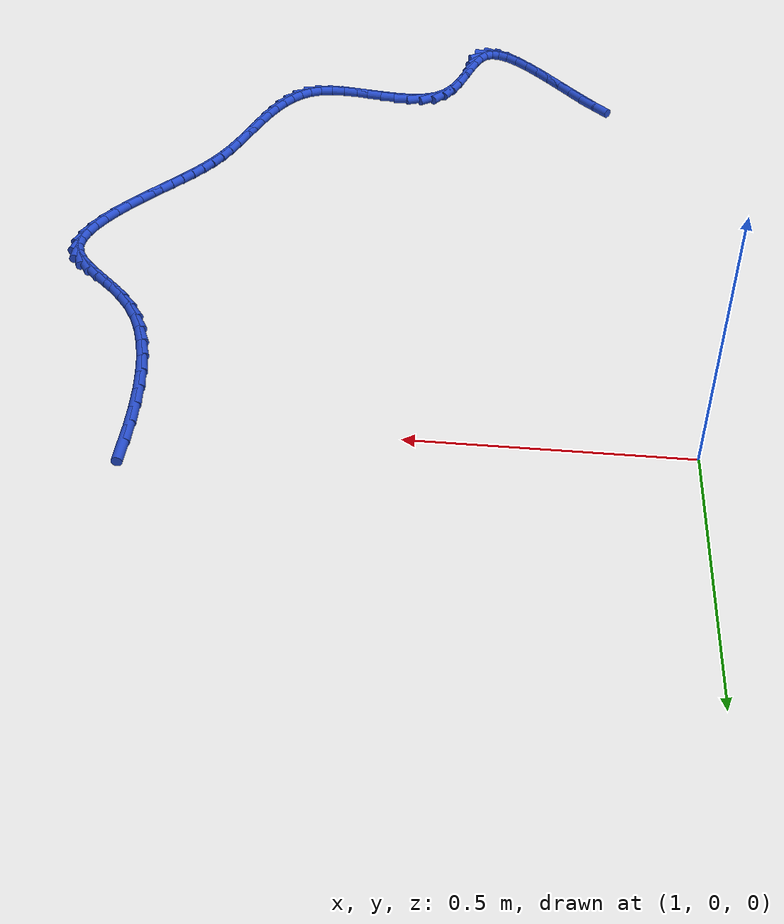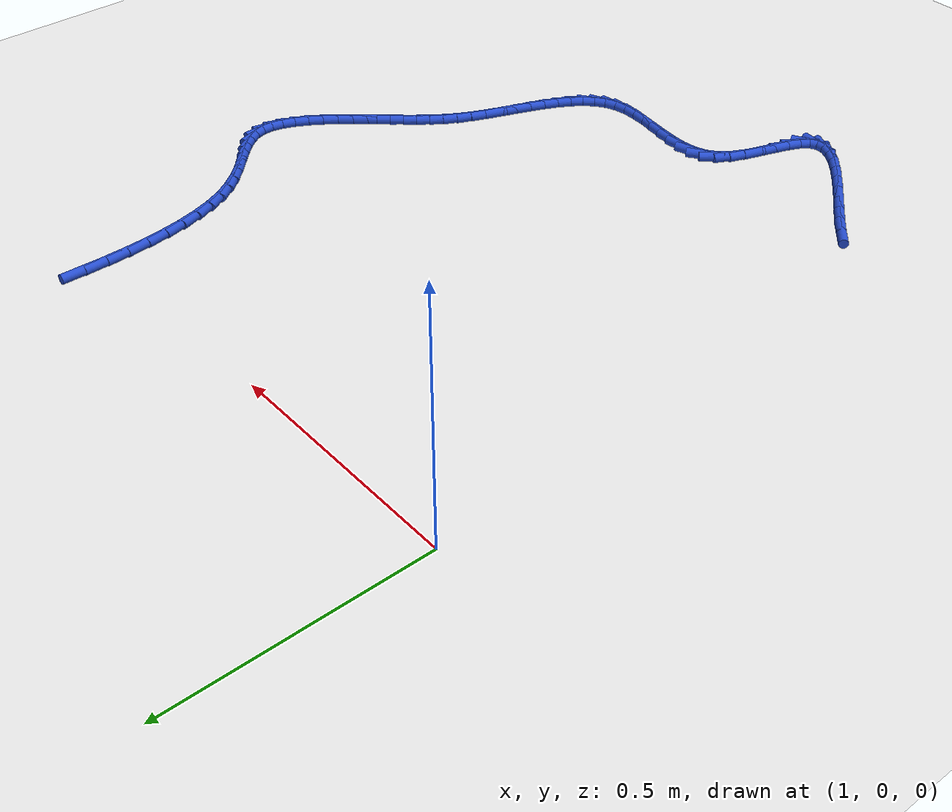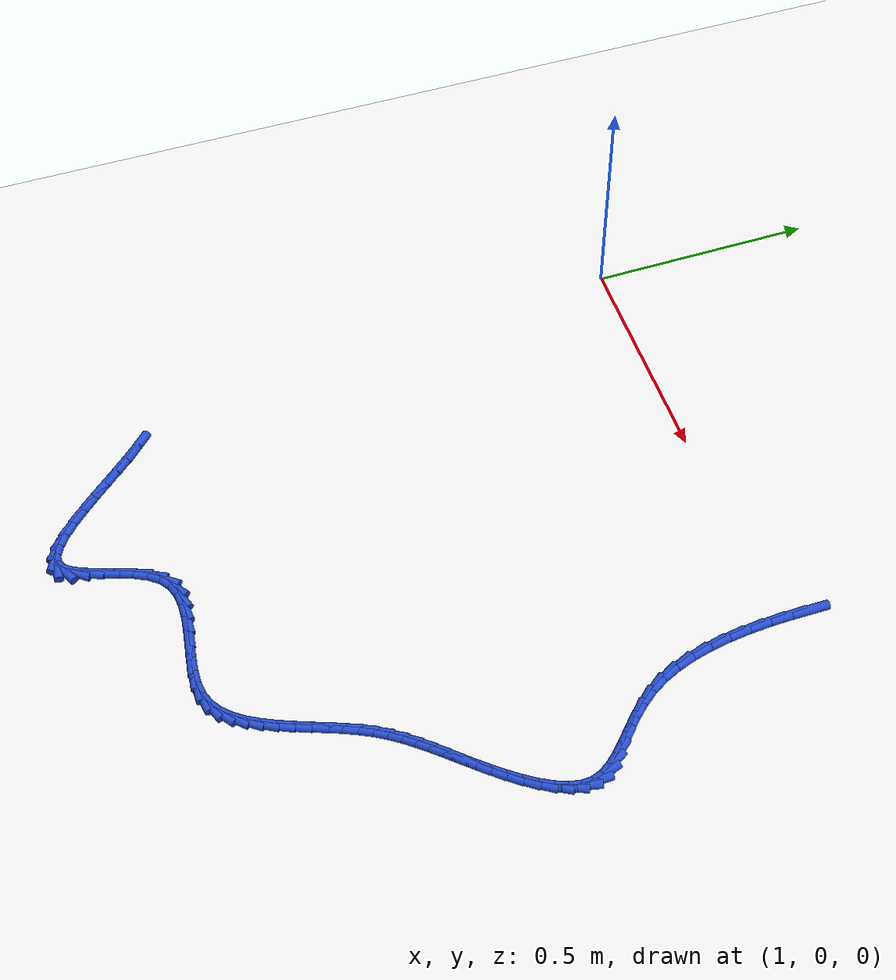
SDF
<sdf version="1.6">
 <world name="default">
  <model name="ground_plane">
   <static>1</static>
   <link name="link">
    <collision name="collision">
     <geometry><plane><normal>0 0 1</normal><size>100 100</size></plane></geometry>
     <surface><friction><ode><mu>100</mu><mu2>50</mu2></ode></friction></surface>
    </collision>
    <visual name="visual">
     <cast_shadows>0</cast_shadows>
     <geometry><plane><normal>0 0 1</normal><size>100 100</size></plane></geometry>
     <material>
      <script><uri>file://media/materials/scripts/gazebo.material</uri><name>Gazebo/WhiteGlow</name></script>
     </material>
    </visual>
   </link>
  </model>
  <model name="line">
   <link name="link_151">
    <pose>1.9687246488284251 0.068940906484432 0.01 0 1.57 1.5566883954499937</pose>
    <collision name="collision">
     <geometry><cylinder><radius>0.01</radius><length>0.08</length></cylinder></geometry>
    </collision>
    <visual name="visual">
     <material>
      <script><name>Gazebo/Blue</name><uri>file://media/materials/scripts/gazebo.material</uri></script>
     </material>
     <geometry><cylinder><radius>0.01</radius><length>0.08</length></cylinder></geometry>
    </visual>
   </link>
   <link name="link_152">
    <pose>1.9680653290896477 0.02221003008653097 0.01 0 1.57 -1.5502358848546987</pose>
    <collision name="collision">
     <geometry><cylinder><radius>0.01</radius><length>0.08</length></cylinder></geometry>
    </collision>
    <visual name="visual">
     <material>
      <script><name>Gazebo/Blue</name><uri>file://media/materials/scripts/gazebo.material</uri></script>
     </material>
     <geometry><cylinder><radius>0.01</radius><length>0.08</length></cylinder></geometry>
    </visual>
   </link>
   <link name="link_153">
    <pose>1.9690164489177648 -0.024043148918518914 0.01 0 1.57 -1.5098201945171041</pose>
    <collision name="collision">
     <geometry><cylinder><radius>0.01</radius><length>0.08</length></cylinder></geometry>
    </collision>
    <visual name="visual">
     <material>
      <script><name>Gazebo/Blue</name><uri>file://media/materials/scripts/gazebo.material</uri></script>
     </material>
     <geometry><cylinder><radius>0.01</radius><length>0.08</length></cylinder></geometry>
    </visual>
   </link>
   <link name="link_154">
    <pose>1.9717844994898681 -0.06938251366634053 0.01 0 1.57 -1.4623007918556568</pose>
    <collision name="collision">
     <geometry><cylinder><radius>0.01</radius><length>0.08</length></cylinder></geometry>
    </collision>
    <visual name="visual">
     <material>
      <script><name>Gazebo/Blue</name><uri>file://media/materials/scripts/gazebo.material</uri></script>
     </material>
     <geometry><cylinder><radius>0.01</radius><length>0.08</length></cylinder></geometry>
    </visual>
   </link>
   <link name="link_155">
    <pose>1.9765759719830498 -0.11337194729255826 0.01 0 1.57 -1.405936120022011</pose>
    <collision name="collision">
     <geometry><cylinder><radius>0.01</radius><length>0.08</length></cylinder></geometry>
    </collision>
    <visual name="visual">
     <material>
      <script><name>Gazebo/Blue</name><uri>file://media/materials/scripts/gazebo.material</uri></script>
     </material>
     <geometry><cylinder><radius>0.01</radius><length>0.08</length></cylinder></geometry>
    </visual>
   </link>
   <link name="link_156">
    <pose>1.983597357574402 -0.15557533293279663 0.01 0 1.57 -1.3385104959380658</pose>
    <collision name="collision">
     <geometry><cylinder><radius>0.01</radius><length>0.08</length></cylinder></geometry>
    </collision>
    <visual name="visual">
     <material>
      <script><name>Gazebo/Blue</name><uri>file://media/materials/scripts/gazebo.material</uri></script>
     </material>
     <geometry><cylinder><radius>0.01</radius><length>0.08</length></cylinder></geometry>
    </visual>
   </link>
   <link name="link_157">
    <pose>1.993055147441015 -0.1955565537226799 0.01 0 1.57 -1.2572739030714237</pose>
    <collision name="collision">
     <geometry><cylinder><radius>0.01</radius><length>0.08</length></cylinder></geometry>
    </collision>
    <visual name="visual">
     <material>
      <script><name>Gazebo/Blue</name><uri>file://media/materials/scripts/gazebo.material</uri></script>
     </material>
     <geometry><cylinder><radius>0.01</radius><length>0.08</length></cylinder></geometry>
    </visual>
   </link>
   <link name="link_158">
    <pose>2.0051558327599825 -0.2328794927978326 0.01 0 1.57 -1.1589969964617863</pose>
    <collision name="collision">
     <geometry><cylinder><radius>0.01</radius><length>0.08</length></cylinder></geometry>
    </collision>
    <visual name="visual">
     <material>
      <script><name>Gazebo/Blue</name><uri>file://media/materials/scripts/gazebo.material</uri></script>
     </material>
     <geometry><cylinder><radius>0.01</radius><length>0.08</length></cylinder></geometry>
    </visual>
   </link>
   <link name="link_159">
    <pose>2.0201059047083954 -0.26710803329387905 0.01 0 1.57 -1.041081575366171</pose>
    <collision name="collision">
     <geometry><cylinder><radius>0.01</radius><length>0.08</length></cylinder></geometry>
    </collision>
    <visual name="visual">
     <material>
      <script><name>Gazebo/Blue</name><uri>file://media/materials/scripts/gazebo.material</uri></script>
     </material>
     <geometry><cylinder><radius>0.01</radius><length>0.08</length></cylinder></geometry>
    </visual>
   </link>
   <link name="link_160">
    <pose>2.0380906282527396 -0.2978231182196289 0.01 0 1.57 -0.924086045255557</pose>
    <collision name="collision">
     <geometry><cylinder><radius>0.01</radius><length>0.08</length></cylinder></geometry>
    </collision>
    <visual name="visual">
     <material>
      <script><name>Gazebo/Blue</name><uri>file://media/materials/scripts/gazebo.material</uri></script>
     </material>
     <geometry><cylinder><radius>0.01</radius><length>0.08</length></cylinder></geometry>
    </visual>
   </link>
   <link name="link_161">
    <pose>2.0586834482182583 -0.3250974210305509 0.01 0 1.57 -0.8363928799036893</pose>
    <collision name="collision">
     <geometry><cylinder><radius>0.01</radius><length>0.08</length></cylinder></geometry>
    </collision>
    <visual name="visual">
     <material>
      <script><name>Gazebo/Blue</name><uri>file://media/materials/scripts/gazebo.material</uri></script>
     </material>
     <geometry><cylinder><radius>0.01</radius><length>0.08</length></cylinder></geometry>
    </visual>
   </link>
   <link name="link_162">
    <pose>2.080768241185261 -0.3495578331266087 0.01 0 1.57 -0.7826979853121446</pose>
    <collision name="collision">
     <geometry><cylinder><radius>0.01</radius><length>0.08</length></cylinder></geometry>
    </collision>
    <visual name="visual">
     <material>
      <script><name>Gazebo/Blue</name><uri>file://media/materials/scripts/gazebo.material</uri></script>
     </material>
     <geometry><cylinder><radius>0.01</radius><length>0.08</length></cylinder></geometry>
    </visual>
   </link>
   <link name="link_163">
    <pose>2.103192038112249 -0.3718608593723287 0.01 0 1.57 -0.7663566326472286</pose>
    <collision name="collision">
     <geometry><cylinder><radius>0.01</radius><length>0.08</length></cylinder></geometry>
    </collision>
    <visual name="visual">
     <material>
      <script><name>Gazebo/Blue</name><uri>file://media/materials/scripts/gazebo.material</uri></script>
     </material>
     <geometry><cylinder><radius>0.01</radius><length>0.08</length></cylinder></geometry>
    </visual>
   </link>
   <link name="link_164">
    <pose>2.1248018699577185 -0.39266300463223697 0.01 0 1.57 -0.7933491603346917</pose>
    <collision name="collision">
     <geometry><cylinder><radius>0.01</radius><length>0.08</length></cylinder></geometry>
    </collision>
    <visual name="visual">
     <material>
      <script><name>Gazebo/Blue</name><uri>file://media/materials/scripts/gazebo.material</uri></script>
     </material>
     <geometry><cylinder><radius>0.01</radius><length>0.08</length></cylinder></geometry>
    </visual>
   </link>
   <link name="link_165">
    <pose>2.1444447676801706 -0.4126207737708596 0.01 0 1.57 -0.8746245094248721</pose>
    <collision name="collision">
     <geometry><cylinder><radius>0.01</radius><length>0.08</length></cylinder></geometry>
    </collision>
    <visual name="visual">
     <material>
      <script><name>Gazebo/Blue</name><uri>file://media/materials/scripts/gazebo.material</uri></script>
     </material>
     <geometry><cylinder><radius>0.01</radius><length>0.08</length></cylinder></geometry>
    </visual>
   </link>
   <link name="link_166">
    <pose>2.1609677622381023 -0.4323906716527228 0.01 0 1.57 -1.0264983077673926</pose>
    <collision name="collision">
     <geometry><cylinder><radius>0.01</radius><length>0.08</length></cylinder></geometry>
    </collision>
    <visual name="visual">
     <material>
      <script><name>Gazebo/Blue</name><uri>file://media/materials/scripts/gazebo.material</uri></script>
     </material>
     <geometry><cylinder><radius>0.01</radius><length>0.08</length></cylinder></geometry>
    </visual>
   </link>
   <link name="link_167">
    <pose>2.1732178845900134 -0.4526292031423528 0.01 0 1.57 -1.2616069532566148</pose>
    <collision name="collision">
     <geometry><cylinder><radius>0.01</radius><length>0.08</length></cylinder></geometry>
    </collision>
    <visual name="visual">
     <material>
      <script><name>Gazebo/Blue</name><uri>file://media/materials/scripts/gazebo.material</uri></script>
     </material>
     <geometry><cylinder><radius>0.01</radius><length>0.08</length></cylinder></geometry>
    </visual>
   </link>
   <link name="link_168">
    <pose>2.1800421656944025 -0.4739928731042756 0.01 0 1.57 -1.5503444755363753</pose>
    <collision name="collision">
     <geometry><cylinder><radius>0.01</radius><length>0.08</length></cylinder></geometry>
    </collision>
    <visual name="visual">
     <material>
      <script><name>Gazebo/Blue</name><uri>file://media/materials/scripts/gazebo.material</uri></script>
     </material>
     <geometry><cylinder><radius>0.01</radius><length>0.08</length></cylinder></geometry>
    </visual>
   </link>
   <link name="link_169">
    <pose>2.1805131887877605 -0.49702049112638796 0.01 0 1.57 1.3527762958781568</pose>
    <collision name="collision">
     <geometry><cylinder><radius>0.01</radius><length>0.08</length></cylinder></geometry>
    </collision>
    <visual name="visual">
     <material>
      <script><name>Gazebo/Blue</name><uri>file://media/materials/scripts/gazebo.material</uri></script>
     </material>
     <geometry><cylinder><radius>0.01</radius><length>0.08</length></cylinder></geometry>
    </visual>
   </link>
   <link name="link_170">
    <pose>2.175083097451576 -0.5215309993766007 0.01 0 1.57 1.1855213435113294</pose>
    <collision name="collision">
     <geometry><cylinder><radius>0.01</radius><length>0.08</length></cylinder></geometry>
    </collision>
    <visual name="visual">
     <material>
      <script><name>Gazebo/Blue</name><uri>file://media/materials/scripts/gazebo.material</uri></script>
     </material>
     <geometry><cylinder><radius>0.01</radius><length>0.08</length></cylinder></geometry>
    </visual>
   </link>
   <link name="link_171">
    <pose>2.1647254419650923 -0.5470712651580745 0.01 0 1.57 1.069521757066636</pose>
    <collision name="collision">
     <geometry><cylinder><radius>0.01</radius><length>0.08</length></cylinder></geometry>
    </collision>
    <visual name="visual">
     <material>
      <script><name>Gazebo/Blue</name><uri>file://media/materials/scripts/gazebo.material</uri></script>
     </material>
     <geometry><cylinder><radius>0.01</radius><length>0.08</length></cylinder></geometry>
    </visual>
   </link>
   <link name="link_172">
    <pose>2.150414745095878 -0.573187648320517 0.01 0 1.57 0.9881785007850481</pose>
    <collision name="collision">
     <geometry><cylinder><radius>0.01</radius><length>0.08</length></cylinder></geometry>
    </collision>
    <visual name="visual">
     <material>
      <script><name>Gazebo/Blue</name><uri>file://media/materials/scripts/gazebo.material</uri></script>
     </material>
     <geometry><cylinder><radius>0.01</radius><length>0.08</length></cylinder></geometry>
    </visual>
   </link>
   <link name="link_173">
    <pose>2.133125529611498 -0.5994265087136367 0.01 0 1.57 0.9307020876666872</pose>
    <collision name="collision">
     <geometry><cylinder><radius>0.01</radius><length>0.08</length></cylinder></geometry>
    </collision>
    <visual name="visual">
     <material>
      <script><name>Gazebo/Blue</name><uri>file://media/materials/scripts/gazebo.material</uri></script>
     </material>
     <geometry><cylinder><radius>0.01</radius><length>0.08</length></cylinder></geometry>
    </visual>
   </link>
   <link name="link_174">
    <pose>2.1138323182795213 -0.6253342061871414 0.01 0 1.57 0.8906334164430298</pose>
    <collision name="collision">
     <geometry><cylinder><radius>0.01</radius><length>0.08</length></cylinder></geometry>
    </collision>
    <visual name="visual">
     <material>
      <script><name>Gazebo/Blue</name><uri>file://media/materials/scripts/gazebo.material</uri></script>
     </material>
     <geometry><cylinder><radius>0.01</radius><length>0.08</length></cylinder></geometry>
    </visual>
   </link>
   <link name="link_175">
    <pose>2.0935096338675145 -0.6504571005907392 0.01 0 1.57 0.8644421962767019</pose>
    <collision name="collision">
     <geometry><cylinder><radius>0.01</radius><length>0.08</length></cylinder></geometry>
    </collision>
    <visual name="visual">
     <material>
      <script><name>Gazebo/Blue</name><uri>file://media/materials/scripts/gazebo.material</uri></script>
     </material>
     <geometry><cylinder><radius>0.01</radius><length>0.08</length></cylinder></geometry>
    </visual>
   </link>
   <link name="link_176">
    <pose>2.073124700657414 -0.6743491741831434 0.01 0 1.57 0.8501683007787443</pose>
    <collision name="collision">
     <geometry><cylinder><radius>0.01</radius><length>0.08</length></cylinder></geometry>
    </collision>
    <visual name="visual">
     <material>
      <script><name>Gazebo/Blue</name><uri>file://media/materials/scripts/gazebo.material</uri></script>
     </material>
     <geometry><cylinder><radius>0.01</radius><length>0.08</length></cylinder></geometry>
    </visual>
   </link>
   <link name="link_177">
    <pose>2.0532945756190837 -0.6969301177559457 0.01 0 1.57 0.8477991245981236</pose>
    <collision name="collision">
     <geometry><cylinder><radius>0.01</radius><length>0.08</length></cylinder></geometry>
    </collision>
    <visual name="visual">
     <material>
      <script><name>Gazebo/Blue</name><uri>file://media/materials/scripts/gazebo.material</uri></script>
     </material>
     <geometry><cylinder><radius>0.01</radius><length>0.08</length></cylinder></geometry>
    </visual>
   </link>
   <link name="link_178">
    <pose>2.034138766672568 -0.7186392535077085 0.01 0 1.57 0.8586963785996252</pose>
    <collision name="collision">
     <geometry><cylinder><radius>0.01</radius><length>0.08</length></cylinder></geometry>
    </collision>
    <visual name="visual">
     <material>
      <script><name>Gazebo/Blue</name><uri>file://media/materials/scripts/gazebo.material</uri></script>
     </material>
     <geometry><cylinder><radius>0.01</radius><length>0.08</length></cylinder></geometry>
    </visual>
   </link>
   <link name="link_179">
    <pose>2.0157388619137024 -0.7399555064291443 0.01 0 1.57 0.8836286968076942</pose>
    <collision name="collision">
     <geometry><cylinder><radius>0.01</radius><length>0.08</length></cylinder></geometry>
    </collision>
    <visual name="visual">
     <material>
      <script><name>Gazebo/Blue</name><uri>file://media/materials/scripts/gazebo.material</uri></script>
     </material>
     <geometry><cylinder><radius>0.01</radius><length>0.08</length></cylinder></geometry>
    </visual>
   </link>
   <link name="link_180">
    <pose>1.998176449438325 -0.7613578015109652 0.01 0 1.57 0.9224219159535688</pose>
    <collision name="collision">
     <geometry><cylinder><radius>0.01</radius><length>0.08</length></cylinder></geometry>
    </collision>
    <visual name="visual">
     <material>
      <script><name>Gazebo/Blue</name><uri>file://media/materials/scripts/gazebo.material</uri></script>
     </material>
     <geometry><cylinder><radius>0.01</radius><length>0.08</length></cylinder></geometry>
    </visual>
   </link>
   <link name="link_181">
    <pose>1.981533117342271 -0.7833250637438836 0.01 0 1.57 0.9737659279051966</pose>
    <collision name="collision">
     <geometry><cylinder><radius>0.01</radius><length>0.08</length></cylinder></geometry>
    </collision>
    <visual name="visual">
     <material>
      <script><name>Gazebo/Blue</name><uri>file://media/materials/scripts/gazebo.material</uri></script>
     </material>
     <geometry><cylinder><radius>0.01</radius><length>0.08</length></cylinder></geometry>
    </visual>
   </link>
   <link name="link_182">
    <pose>1.9658904537213784 -0.8063362181186121 0.01 0 1.57 1.0351851699034709</pose>
    <collision name="collision">
     <geometry><cylinder><radius>0.01</radius><length>0.08</length></cylinder></geometry>
    </collision>
    <visual name="visual">
     <material>
      <script><name>Gazebo/Blue</name><uri>file://media/materials/scripts/gazebo.material</uri></script>
     </material>
     <geometry><cylinder><radius>0.01</radius><length>0.08</length></cylinder></geometry>
    </visual>
   </link>
   <link name="link_183">
    <pose>1.9513300466714825 -0.8308701896258627 0.01 0 1.57 1.102596644223581</pose>
    <collision name="collision">
     <geometry><cylinder><radius>0.01</radius><length>0.08</length></cylinder></geometry>
    </collision>
    <visual name="visual">
     <material>
      <script><name>Gazebo/Blue</name><uri>file://media/materials/scripts/gazebo.material</uri></script>
     </material>
     <geometry><cylinder><radius>0.01</radius><length>0.08</length></cylinder></geometry>
    </visual>
   </link>
   <link name="link_184">
    <pose>1.937923490170761 -0.8573809153592657 0.01 0 1.57 1.1586619410997463</pose>
    <collision name="collision">
     <geometry><cylinder><radius>0.01</radius><length>0.08</length></cylinder></geometry>
    </collision>
    <visual name="visual">
     <material>
      <script><name>Gazebo/Blue</name><uri>file://media/materials/scripts/gazebo.material</uri></script>
     </material>
     <geometry><cylinder><radius>0.01</radius><length>0.08</length></cylinder></geometry>
    </visual>
   </link>
   <link name="link_185">
    <pose>1.9255172319653797 -0.8857594081939237 0.01 0 1.57 1.1917555984923727</pose>
    <collision name="collision">
     <geometry><cylinder><radius>0.01</radius><length>0.08</length></cylinder></geometry>
    </collision>
    <visual name="visual">
     <material>
      <script><name>Gazebo/Blue</name><uri>file://media/materials/scripts/gazebo.material</uri></script>
     </material>
     <geometry><cylinder><radius>0.01</radius><length>0.08</length></cylinder></geometry>
    </visual>
   </link>
   <link name="link_186">
    <pose>1.9137351641577456 -0.9153402339317358 0.01 0 1.57 1.2045249823333142</pose>
    <collision name="collision">
     <geometry><cylinder><radius>0.01</radius><length>0.08</length></cylinder></geometry>
    </collision>
    <visual name="visual">
     <material>
      <script><name>Gazebo/Blue</name><uri>file://media/materials/scripts/gazebo.material</uri></script>
     </material>
     <geometry><cylinder><radius>0.01</radius><length>0.08</length></cylinder></geometry>
    </visual>
   </link>
   <link name="link_187">
    <pose>1.9021917028720077 -0.9454342659609757 0.01 0 1.57 1.1982912747390604</pose>
    <collision name="collision">
     <geometry><cylinder><radius>0.01</radius><length>0.08</length></cylinder></geometry>
    </collision>
    <visual name="visual">
     <material>
      <script><name>Gazebo/Blue</name><uri>file://media/materials/scripts/gazebo.material</uri></script>
     </material>
     <geometry><cylinder><radius>0.01</radius><length>0.08</length></cylinder></geometry>
    </visual>
   </link>
   <link name="link_188">
    <pose>1.8905012642323133 -0.9753523776699159 0.01 0 1.57 1.1725624667425147</pose>
    <collision name="collision">
     <geometry><cylinder><radius>0.01</radius><length>0.08</length></cylinder></geometry>
    </collision>
    <visual name="visual">
     <material>
      <script><name>Gazebo/Blue</name><uri>file://media/materials/scripts/gazebo.material</uri></script>
     </material>
     <geometry><cylinder><radius>0.01</radius><length>0.08</length></cylinder></geometry>
    </visual>
   </link>
   <link name="link_189">
    <pose>1.8782782643628133 -1.0044054424468305 0.01 0 1.57 1.125001538094624</pose>
    <collision name="collision">
     <geometry><cylinder><radius>0.01</radius><length>0.08</length></cylinder></geometry>
    </collision>
    <visual name="visual">
     <material>
      <script><name>Gazebo/Blue</name><uri>file://media/materials/scripts/gazebo.material</uri></script>
     </material>
     <geometry><cylinder><radius>0.01</radius><length>0.08</length></cylinder></geometry>
    </visual>
   </link>
   <link name="link_190">
    <pose>1.865137119387655 -1.0319043336799927 0.01 0 1.57 1.0512590546175664</pose>
    <collision name="collision">
     <geometry><cylinder><radius>0.01</radius><length>0.08</length></cylinder></geometry>
    </collision>
    <visual name="visual">
     <material>
      <script><name>Gazebo/Blue</name><uri>file://media/materials/scripts/gazebo.material</uri></script>
     </material>
     <geometry><cylinder><radius>0.01</radius><length>0.08</length></cylinder></geometry>
    </visual>
   </link>
   <link name="link_191">
    <pose>1.8506922454309873 -1.0571599247576757 0.01 0 1.57 0.9449609920269554</pose>
    <collision name="collision">
     <geometry><cylinder><radius>0.01</radius><length>0.08</length></cylinder></geometry>
    </collision>
    <visual name="visual">
     <material>
      <script><name>Gazebo/Blue</name><uri>file://media/materials/scripts/gazebo.material</uri></script>
     </material>
     <geometry><cylinder><radius>0.01</radius><length>0.08</length></cylinder></geometry>
    </visual>
   </link>
   <link name="link_192">
    <pose>1.8345580586169592 -1.0794830890681524 0.01 0 1.57 0.7987411297630652</pose>
    <collision name="collision">
     <geometry><cylinder><radius>0.01</radius><length>0.08</length></cylinder></geometry>
    </collision>
    <visual name="visual">
     <material>
      <script><name>Gazebo/Blue</name><uri>file://media/materials/scripts/gazebo.material</uri></script>
     </material>
     <geometry><cylinder><radius>0.01</radius><length>0.08</length></cylinder></geometry>
    </visual>
   </link>
   <link name="link_193">
    <pose>1.81634897506972 -1.0981846999996974 0.01 0 1.57 0.6081965021773068</pose>
    <collision name="collision">
     <geometry><cylinder><radius>0.01</radius><length>0.08</length></cylinder></geometry>
    </collision>
    <visual name="visual">
     <material>
      <script><name>Gazebo/Blue</name><uri>file://media/materials/scripts/gazebo.material</uri></script>
     </material>
     <geometry><cylinder><radius>0.01</radius><length>0.08</length></cylinder></geometry>
    </visual>
   </link>
   <link name="link_194">
    <pose>1.795679410913418 -1.1125756309405832 0.01 0 1.57 0.3799535213966701</pose>
    <collision name="collision">
     <geometry><cylinder><radius>0.01</radius><length>0.08</length></cylinder></geometry>
    </collision>
    <visual name="visual">
     <material>
      <script><name>Gazebo/Blue</name><uri>file://media/materials/scripts/gazebo.material</uri></script>
     </material>
     <geometry><cylinder><radius>0.01</radius><length>0.08</length></cylinder></geometry>
    </visual>
   </link>
   <link name="link_195">
    <pose>1.7721638047227108 -1.1219667958943507 0.01 0 1.57 0.15327561379206026</pose>
    <collision name="collision">
     <geometry><cylinder><radius>0.01</radius><length>0.08</length></cylinder></geometry>
    </collision>
    <visual name="visual">
     <material>
      <script><name>Gazebo/Blue</name><uri>file://media/materials/scripts/gazebo.material</uri></script>
     </material>
     <geometry><cylinder><radius>0.01</radius><length>0.08</length></cylinder></geometry>
    </visual>
   </link>
   <link name="link_196">
    <pose>1.745635475778066 -1.1260650864545438 0.01 0 1.57 -0.004152116811849883</pose>
    <collision name="collision">
     <geometry><cylinder><radius>0.01</radius><length>0.08</length></cylinder></geometry>
    </collision>
    <visual name="visual">
     <material>
      <script><name>Gazebo/Blue</name><uri>file://media/materials/scripts/gazebo.material</uri></script>
     </material>
     <geometry><cylinder><radius>0.01</radius><length>0.08</length></cylinder></geometry>
    </visual>
   </link>
   <link name="link_197">
    <pose>1.7166836321266592 -1.125944874326962 0.01 0 1.57 -0.09666252109077791</pose>
    <collision name="collision">
     <geometry><cylinder><radius>0.01</radius><length>0.08</length></cylinder></geometry>
    </collision>
    <visual name="visual">
     <material>
      <script><name>Gazebo/Blue</name><uri>file://media/materials/scripts/gazebo.material</uri></script>
     </material>
     <geometry><cylinder><radius>0.01</radius><length>0.08</length></cylinder></geometry>
    </visual>
   </link>
   <link name="link_198">
    <pose>1.686060537025086 -1.122975514773057 0.01 0 1.57 -0.1401299872545839</pose>
    <collision name="collision">
     <geometry><cylinder><radius>0.01</radius><length>0.08</length></cylinder></geometry>
    </collision>
    <visual name="visual">
     <material>
      <script><name>Gazebo/Blue</name><uri>file://media/materials/scripts/gazebo.material</uri></script>
     </material>
     <geometry><cylinder><radius>0.01</radius><length>0.08</length></cylinder></geometry>
    </visual>
   </link>
   <link name="link_199">
    <pose>1.6545184537299416 -1.118526363054281 0.01 0 1.57 -0.14281666840625218</pose>
    <collision name="collision">
     <geometry><cylinder><radius>0.01</radius><length>0.08</length></cylinder></geometry>
    </collision>
    <visual name="visual">
     <material>
      <script><name>Gazebo/Blue</name><uri>file://media/materials/scripts/gazebo.material</uri></script>
     </material>
     <geometry><cylinder><radius>0.01</radius><length>0.08</length></cylinder></geometry>
    </visual>
   </link>
   <link name="link_200">
    <pose>1.622809645497822 -1.1139667744320871 0.01 0 1.57 -0.10565660290226989</pose>
    <collision name="collision">
     <geometry><cylinder><radius>0.01</radius><length>0.08</length></cylinder></geometry>
    </collision>
    <visual name="visual">
     <material>
      <script><name>Gazebo/Blue</name><uri>file://media/materials/scripts/gazebo.material</uri></script>
     </material>
     <geometry><cylinder><radius>0.01</radius><length>0.08</length></cylinder></geometry>
    </visual>
   </link>
   <link name="link_201">
    <pose>1.591686375585324 -1.1106661041679273 0.01 0 1.57 -0.022570820470425017</pose>
    <collision name="collision">
     <geometry><cylinder><radius>0.01</radius><length>0.08</length></cylinder></geometry>
    </collision>
    <visual name="visual">
     <material>
      <script><name>Gazebo/Blue</name><uri>file://media/materials/scripts/gazebo.material</uri></script>
     </material>
     <geometry><cylinder><radius>0.01</radius><length>0.08</length></cylinder></geometry>
    </visual>
   </link>
   <link name="link_202">
    <pose>1.5619009072490406 -1.1099937075232538 0.01 0 1.57 0.119492419591984</pose>
    <collision name="collision">
     <geometry><cylinder><radius>0.01</radius><length>0.08</length></cylinder></geometry>
    </collision>
    <visual name="visual">
     <material>
      <script><name>Gazebo/Blue</name><uri>file://media/materials/scripts/gazebo.material</uri></script>
     </material>
     <geometry><cylinder><radius>0.01</radius><length>0.08</length></cylinder></geometry>
    </visual>
   </link>
   <link name="link_203">
    <pose>1.5342055037455697 -1.11331893975952 0.01 0 1.57 0.33644682382855445</pose>
    <collision name="collision">
     <geometry><cylinder><radius>0.01</radius><length>0.08</length></cylinder></geometry>
    </collision>
    <visual name="visual">
     <material>
      <script><name>Gazebo/Blue</name><uri>file://media/materials/scripts/gazebo.material</uri></script>
     </material>
     <geometry><cylinder><radius>0.01</radius><length>0.08</length></cylinder></geometry>
    </visual>
   </link>
   <link name="link_204">
    <pose>1.5093524283315063 -1.122011156138177 0.01 0 1.57 0.6277970945406592</pose>
    <collision name="collision">
     <geometry><cylinder><radius>0.01</radius><length>0.08</length></cylinder></geometry>
    </collision>
    <visual name="visual">
     <material>
      <script><name>Gazebo/Blue</name><uri>file://media/materials/scripts/gazebo.material</uri></script>
     </material>
     <geometry><cylinder><radius>0.01</radius><length>0.08</length></cylinder></geometry>
    </visual>
   </link>
   <link name="link_205">
    <pose>1.488093843958989 -1.1374394918170503 0.01 0 1.57 0.9214125590038283</pose>
    <collision name="collision">
     <geometry><cylinder><radius>0.01</radius><length>0.08</length></cylinder></geometry>
    </collision>
    <visual name="visual">
     <material>
      <script><name>Gazebo/Blue</name><uri>file://media/materials/scripts/gazebo.material</uri></script>
     </material>
     <geometry><cylinder><radius>0.01</radius><length>0.08</length></cylinder></geometry>
    </visual>
   </link>
   <link name="link_206">
    <pose>1.4708235014715385 -1.1601865984062911 0.01 0 1.57 1.107035099854926</pose>
    <collision name="collision">
     <geometry><cylinder><radius>0.01</radius><length>0.08</length></cylinder></geometry>
    </collision>
    <visual name="visual">
     <material>
      <script><name>Gazebo/Blue</name><uri>file://media/materials/scripts/gazebo.material</uri></script>
     </material>
     <geometry><cylinder><radius>0.01</radius><length>0.08</length></cylinder></geometry>
    </visual>
   </link>
   <link name="link_207">
    <pose>1.456771728498601 -1.1882821634982341 0.01 0 1.57 1.205533521859728</pose>
    <collision name="collision">
     <geometry><cylinder><radius>0.01</radius><length>0.08</length></cylinder></geometry>
    </collision>
    <visual name="visual">
     <material>
      <script><name>Gazebo/Blue</name><uri>file://media/materials/scripts/gazebo.material</uri></script>
     </material>
     <geometry><cylinder><radius>0.01</radius><length>0.08</length></cylinder></geometry>
    </visual>
   </link>
   <link name="link_208">
    <pose>1.4449332012366845 -1.219238771689708 0.01 0 1.57 1.243678082338877</pose>
    <collision name="collision">
     <geometry><cylinder><radius>0.01</radius><length>0.08</length></cylinder></geometry>
    </collision>
    <visual name="visual">
     <material>
      <script><name>Gazebo/Blue</name><uri>file://media/materials/scripts/gazebo.material</uri></script>
     </material>
     <geometry><cylinder><radius>0.01</radius><length>0.08</length></cylinder></geometry>
    </visual>
   </link>
   <link name="link_209">
    <pose>1.4343025958822968 -1.2505690075775413 0.01 0 1.57 1.2279678443144577</pose>
    <collision name="collision">
     <geometry><cylinder><radius>0.01</radius><length>0.08</length></cylinder></geometry>
    </collision>
    <visual name="visual">
     <material>
      <script><name>Gazebo/Blue</name><uri>file://media/materials/scripts/gazebo.material</uri></script>
     </material>
     <geometry><cylinder><radius>0.01</radius><length>0.08</length></cylinder></geometry>
    </visual>
   </link>
   <link name="link_210">
    <pose>1.4238745886319462 -1.2797854557585642 0.01 0 1.57 1.1427561490251492</pose>
    <collision name="collision">
     <geometry><cylinder><radius>0.01</radius><length>0.08</length></cylinder></geometry>
    </collision>
    <visual name="visual">
     <material>
      <script><name>Gazebo/Blue</name><uri>file://media/materials/scripts/gazebo.material</uri></script>
     </material>
     <geometry><cylinder><radius>0.01</radius><length>0.08</length></cylinder></geometry>
    </visual>
   </link>
   <link name="link_211">
    <pose>1.4126438556821392 -1.3044007008296046 0.01 0 1.57 0.9311840352915413</pose>
    <collision name="collision">
     <geometry><cylinder><radius>0.01</radius><length>0.08</length></cylinder></geometry>
    </collision>
    <visual name="visual">
     <material>
      <script><name>Gazebo/Blue</name><uri>file://media/materials/scripts/gazebo.material</uri></script>
     </material>
     <geometry><cylinder><radius>0.01</radius><length>0.08</length></cylinder></geometry>
    </visual>
   </link>
   <link name="link_212">
    <pose>1.399605073229385 -1.3219273273874927 0.01 0 1.57 0.47279014129268276</pose>
    <collision name="collision">
     <geometry><cylinder><radius>0.01</radius><length>0.08</length></cylinder></geometry>
    </collision>
    <visual name="visual">
     <material>
      <script><name>Gazebo/Blue</name><uri>file://media/materials/scripts/gazebo.material</uri></script>
     </material>
     <geometry><cylinder><radius>0.01</radius><length>0.08</length></cylinder></geometry>
    </visual>
   </link>
   <link name="link_213">
    <pose>1.3838031325466817 -1.330009719301133 0.01 0 1.57 -0.08617910487577686</pose>
    <collision name="collision">
     <geometry><cylinder><radius>0.01</radius><length>0.08</length></cylinder></geometry>
    </collision>
    <visual name="visual">
     <material>
      <script><name>Gazebo/Blue</name><uri>file://media/materials/scripts/gazebo.material</uri></script>
     </material>
     <geometry><cylinder><radius>0.01</radius><length>0.08</length></cylinder></geometry>
    </visual>
   </link>
   <link name="link_214">
    <pose>1.3650830849160582 -1.3283924366037418 0.01 0 1.57 -0.4372874283607073</pose>
    <collision name="collision">
     <geometry><cylinder><radius>0.01</radius><length>0.08</length></cylinder></geometry>
    </collision>
    <visual name="visual">
     <material>
      <script><name>Gazebo/Blue</name><uri>file://media/materials/scripts/gazebo.material</uri></script>
     </material>
     <geometry><cylinder><radius>0.01</radius><length>0.08</length></cylinder></geometry>
    </visual>
   </link>
   <link name="link_215">
    <pose>1.3439318963495064 -1.3185048698626471 0.01 0 1.57 -0.6258856735589886</pose>
    <collision name="collision">
     <geometry><cylinder><radius>0.01</radius><length>0.08</length></cylinder></geometry>
    </collision>
    <visual name="visual">
     <material>
      <script><name>Gazebo/Blue</name><uri>file://media/materials/scripts/gazebo.material</uri></script>
     </material>
     <geometry><cylinder><radius>0.01</radius><length>0.08</length></cylinder></geometry>
    </visual>
   </link>
   <link name="link_216">
    <pose>1.3208546163543535 -1.3018238733092473 0.01 0 1.57 -0.7316656207778893</pose>
    <collision name="collision">
     <geometry><cylinder><radius>0.01</radius><length>0.08</length></cylinder></geometry>
    </collision>
    <visual name="visual">
     <material>
      <script><name>Gazebo/Blue</name><uri>file://media/materials/scripts/gazebo.material</uri></script>
     </material>
     <geometry><cylinder><radius>0.01</radius><length>0.08</length></cylinder></geometry>
    </visual>
   </link>
   <link name="link_217">
    <pose>1.2963562944379274 -1.2798263011749393 0.01 0 1.57 -0.7936509688912364</pose>
    <collision name="collision">
     <geometry><cylinder><radius>0.01</radius><length>0.08</length></cylinder></geometry>
    </collision>
    <visual name="visual">
     <material>
      <script><name>Gazebo/Blue</name><uri>file://media/materials/scripts/gazebo.material</uri></script>
     </material>
     <geometry><cylinder><radius>0.01</radius><length>0.08</length></cylinder></geometry>
    </visual>
   </link>
   <link name="link_218">
    <pose>1.2709419801075539 -1.2539890076911204 0.01 0 1.57 -0.8293288812268019</pose>
    <collision name="collision">
     <geometry><cylinder><radius>0.01</radius><length>0.08</length></cylinder></geometry>
    </collision>
    <visual name="visual">
     <material>
      <script><name>Gazebo/Blue</name><uri>file://media/materials/scripts/gazebo.material</uri></script>
     </material>
     <geometry><cylinder><radius>0.01</radius><length>0.08</length></cylinder></geometry>
    </visual>
   </link>
   <link name="link_219">
    <pose>1.2451167228705622 -1.2257888470891896 0.01 0 1.57 -0.8465265075813608</pose>
    <collision name="collision">
     <geometry><cylinder><radius>0.01</radius><length>0.08</length></cylinder></geometry>
    </collision>
    <visual name="visual">
     <material>
      <script><name>Gazebo/Blue</name><uri>file://media/materials/scripts/gazebo.material</uri></script>
     </material>
     <geometry><cylinder><radius>0.01</radius><length>0.08</length></cylinder></geometry>
    </visual>
   </link>
   <link name="link_220">
    <pose>1.2193854333940992 -1.1967024640545694 0.01 0 1.57 -0.8489214325955375</pose>
    <collision name="collision">
     <geometry><cylinder><radius>0.01</radius><length>0.08</length></cylinder></geometry>
    </collision>
    <visual name="visual">
     <material>
      <script><name>Gazebo/Blue</name><uri>file://media/materials/scripts/gazebo.material</uri></script>
     </material>
     <geometry><cylinder><radius>0.01</radius><length>0.08</length></cylinder></geometry>
    </visual>
   </link>
   <link name="link_221">
    <pose>1.1941166303309425 -1.1680006522174042 0.01 0 1.57 -0.8388686799621865</pose>
    <collision name="collision">
     <geometry><cylinder><radius>0.01</radius><length>0.08</length></cylinder></geometry>
    </collision>
    <visual name="visual">
     <material>
      <script><name>Gazebo/Blue</name><uri>file://media/materials/scripts/gazebo.material</uri></script>
     </material>
     <geometry><cylinder><radius>0.01</radius><length>0.08</length></cylinder></geometry>
    </visual>
   </link>
   <link name="link_222">
    <pose>1.1692871467615766 -1.1403630497155854 0.01 0 1.57 -0.8154195768904688</pose>
    <collision name="collision">
     <geometry><cylinder><radius>0.01</radius><length>0.08</length></cylinder></geometry>
    </collision>
    <visual name="visual">
     <material>
      <script><name>Gazebo/Blue</name><uri>file://media/materials/scripts/gazebo.material</uri></script>
     </material>
     <geometry><cylinder><radius>0.01</radius><length>0.08</length></cylinder></geometry>
    </visual>
   </link>
   <link name="link_223">
    <pose>1.1448039396053016 -1.114363833369601 0.01 0 1.57 -0.776165781110104</pose>
    <collision name="collision">
     <geometry><cylinder><radius>0.01</radius><length>0.08</length></cylinder></geometry>
    </collision>
    <visual name="visual">
     <material>
      <script><name>Gazebo/Blue</name><uri>file://media/materials/scripts/gazebo.material</uri></script>
     </material>
     <geometry><cylinder><radius>0.01</radius><length>0.08</length></cylinder></geometry>
    </visual>
   </link>
  </model>
 </world>
</sdf>
